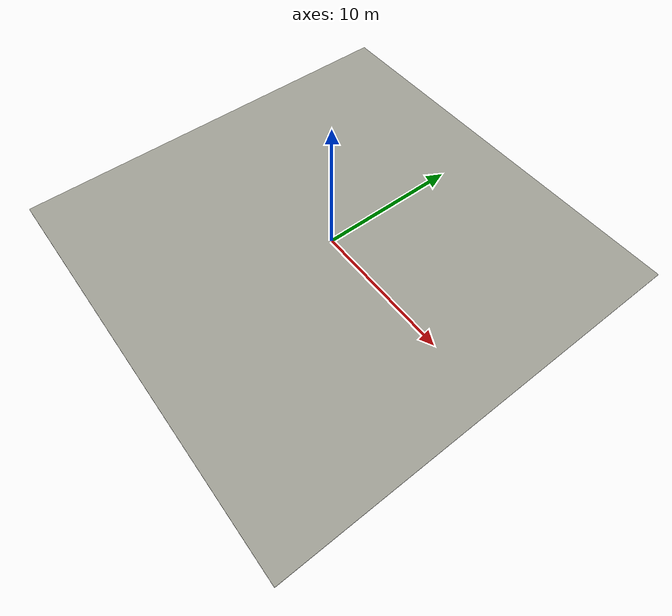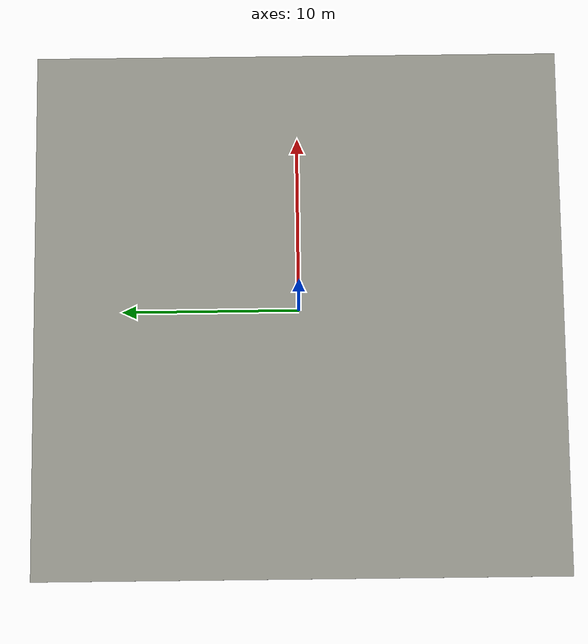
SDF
<?xml version="1.0"?>
<sdf version="1.6">
  <world name="flat_concrete">
    <gravity>0 0 -9.80665</gravity>
    <physics name="ode_physics" default="1" type="ode">
      <max_step_size>0.001</max_step_size>
      <real_time_factor>1.0</real_time_factor>
      <real_time_update_rate>1000</real_time_update_rate>
      <ode>
        <solver><type>quick</type><iters>80</iters><sor>1.3</sor></solver>
        <constraints><cfm>0.0</cfm><erp>0.2</erp><contact_max_correcting_vel>0.1</contact_max_correcting_vel><contact_surface_layer>0.001</contact_surface_layer></constraints>
      </ode>
    </physics>

    <plugin name="gazebo_ros_state" filename="libgazebo_ros_state.so">
      <ros><namespace>/gazebo</namespace></ros>
      <update_rate>50.0</update_rate>
    </plugin>

    <scene>
      <ambient>0.65 0.65 0.65 1</ambient>
      <background>0.82 0.88 0.94 1</background>
      <shadows>true</shadows>
    </scene>

    <model name="concrete_floor">
      <static>true</static>
      <link name="floor_link">
        <collision name="floor_collision">
          <geometry><box><size>30 30 0.10</size></box></geometry>
          <pose>0 0 -0.05 0 0 0</pose>
          <surface><friction><ode><mu>1.2</mu><mu2>1.2</mu2></ode></friction></surface>
        </collision>
        <visual name="floor_visual">
          <geometry><box><size>30 30 0.10</size></box></geometry>
          <pose>0 0 -0.05 0 0 0</pose>
          <material><ambient>0.55 0.55 0.52 1</ambient><diffuse>0.62 0.62 0.58 1</diffuse></material>
        </visual>
      </link>
    </model>

    <include><uri>model://sun</uri></include>
  </world>
</sdf>
